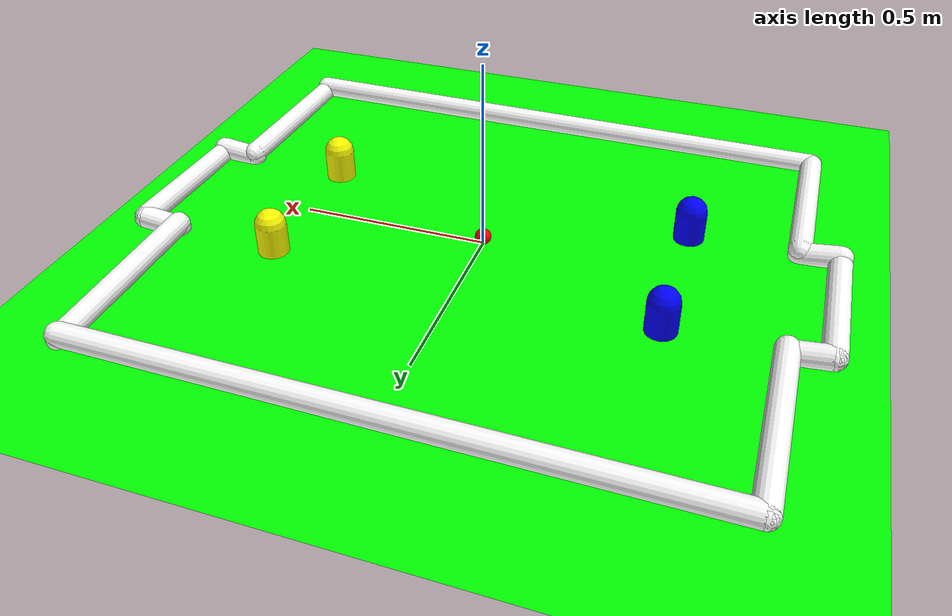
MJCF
<mujoco model="robo_soccer">
	<compiler angle="radian" coordinate="local" inertiafromgeom="true"/>
	<option integrator="RK4" timestep="0.01"/>
	<default>
		<joint armature="1" damping="1" limited="true"/>
		<geom conaffinity="1" contype="1" friction="0.1 0.1 0.1"/>
	</default>

    <asset>
    <texture builtin="gradient" height="100" rgb1="1 1 1" rgb2="0 0 0" type="skybox" width="100"/>
    <texture builtin="flat" height="1278" mark="cross" markrgb="1 1 1" name="texgeom" random="0.01" rgb1="0.8 0.6 0.4" rgb2="0.8 0.6 0.4" type="cube" width="127"/>
    <texture builtin="checker" height="100" name="texplane" rgb1="0 0 0" rgb2="0.8 0.8 0.8" type="2d" width="100"/>
    <material name="MatPlane" reflectance="0.5" shininess="1" specular="1" texrepeat="60 60" texture="texplane"/>
    <material name="geom" texture="texgeom" texuniform="true"/>
  </asset>

	<worldbody>
		<!-- Arena -->
		<geom conaffinity="0" contype="0" name="ground" pos="0 0 0" size="1 1 10" type="plane" rgba="0 1 0 0.8"/>
		<body name="arena">
			<geom conaffinity="0" contype="0" fromto="-0.78 -0.68 0.01 0.78 -0.68 0.02135" name="sideS" size=".03" type="capsule" mass="100" rgba="1 1 1 1"/>
			<geom conaffinity="0" contype="0" fromto="-0.78 0.68 0.01 0.78 0.68 0.02135" name="sideN" size=".03" type="capsule" mass="100" rgba="1 1 1 1"/>
			<geom conaffinity="0" contype="0" fromto="0.88 -0.2 0.01 0.88 0.2 0.02135" name="sideG1" size=".03" type="capsule" mass="100" rgba="1 1 1 1"/>
			<geom conaffinity="0" contype="0" fromto="-0.88 -0.2 0.01 -0.88 0.2 0.02135" name="sideG2" size=".03" type="capsule" mass="100" rgba="1 1 1 1"/>
			<geom conaffinity="1" contype="0" fromto="-0.78 -0.68 0.01 -0.78 -0.2 0.02135" name="sideE1" size=".03" type="capsule" mass="100" rgba="1 1 1 1"/>
			<geom conaffinity="1" contype="0" fromto="-0.78 0.68 0.01 -0.78 0.2 0.02135" name="sideE2" size=".03" type="capsule" mass="100" rgba="1 1 1 1"/>
			<geom conaffinity="1" contype="0" fromto="0.78 -0.68 0.01 0.78 -0.2 0.02135" name="sideW1" size=".03" type="capsule" mass="100" rgba="1 1 1 1"/>
			<geom conaffinity="1" contype="0" fromto="0.78 0.68 0.01 0.78 0.2 0.02135" name="sideW2" size=".03" type="capsule" mass="100" rgba="1 1 1 1"/>
			<geom conaffinity="0" contype="0" fromto="-0.78 -0.2 0.01 -0.88 -0.2 0.02135" name="side1" size=".03" type="capsule" mass="100" rgba="1 1 1 1"/>
			<geom conaffinity="0" contype="0" fromto="-0.78 0.2 0.01 -0.88 0.2 0.02135" name="side2" size=".03" type="capsule" mass="100" rgba="1 1 1 1"/>
			<geom conaffinity="0" contype="0" fromto="0.78 -0.2 0.01 0.88 -0.2 0.02135" name="side3" size=".03" type="capsule" mass="100" rgba="1 1 1 1"/>
			<geom conaffinity="0" contype="0" fromto="0.78 0.2 0.01 0.88 0.2 0.02135" name="side4" size=".03" type="capsule" mass="100" rgba="1 1 1 1"/>
		</body>

		<!-- Ball -->
		<body name="ball" pos="0 0 0.02135">
			<geom contype="1" conaffinity="0" name="ball" pos="0 0 0" size="0.02135" type="sphere" mass="0.046" rgba="1 0 0 1"/>
			<joint name="ball_slidex" type="slide" pos="0 0 0" axis="1 0 0" range="-0.84 0.84" damping="0.1"/>
      		<joint name="ball_slidey" type="slide" pos="0 0 0" axis="0 1 0" range="-0.64 0.64" damping="0.1"/>
		</body>
		<!-- Agent -->
    	<body name="B1" pos="-0.5 0.2 0.03">
	  		<geom conaffinity="1" contype="0" name="agent_b1" fromto="0 0 -0.04 0 0 0.05" size="0.04" type="capsule" mass="1" rgba='0 0 1 1'/>
			<joint name="b1_slidex" type="slide" pos="0 0 0" axis="1 0 0" range="-0.21 1.21" damping="0.1"/>
      		<joint name="b1_slidey" type="slide" pos="0 0 0" axis="0 1 0" range="-0.81 0.41" damping="0.1"/>
		</body>
		<body name="B2" pos="-0.5 -0.2 0.03">
	  		<geom conaffinity="1" contype="0" name="agent_b2" fromto="0 0 -0.04 0 0 0.05" size="0.04" type="capsule" mass="1" rgba='0 0 1 1'/>
			<joint name="b2_slidex" type="slide" pos="0 0 0" axis="1 0 0" range="-0.21 1.21" damping="0.1"/>
      		<joint name="b2_slidey" type="slide" pos="0 0 0" axis="0 1 0" range="-0.41 0.81" damping="0.1"/>
		</body>
		<body name="Y1" pos="0.5 -0.2 0.03">
	  		<geom conaffinity="1" contype="1" name="agent_y1" fromto="0 0 -0.04 0 0 0.05" size="0.04" type="capsule" mass="1" rgba='1 1 0 1'/>
			<joint name="y1_slidex" type="slide" pos="0 0 0" axis="1 0 0" range="-1.21 0.21" damping="0.1"/>
      		<joint name="y1_slidey" type="slide" pos="0 0 0" axis="0 1 0" range="-0.41 0.81" damping="0.1"/>
		</body>
		<body name="Y2" pos="0.5 0.2 0.03">
	  		<geom conaffinity="1" contype="1" name="agent_y2" fromto="0 0 -0.04 0 0 0.05" size="0.04" type="capsule" mass="1" rgba='1 1 0 1'/>
			<joint name="y2_slidex" type="slide" pos="0 0 0" axis="1 0 0" range="-1.21 0.21" damping="0.1"/>
      		<joint name="y2_slidey" type="slide" pos="0 0 0" axis="0 1 0" range="-0.81 0.41" damping="0.1"/>
		</body>
	</worldbody>
	<actuator>
		<motor ctrllimited="true" ctrlrange="-1 1" gear="1" joint="b1_slidex" name="b1_slidex"/>
    	<motor ctrllimited="true" ctrlrange="-1 1" gear="1" joint="b1_slidey" name="b1_slidey"/>
		<motor ctrllimited="true" ctrlrange="-1 1" gear="1" joint="b2_slidex" name="b2_slidex"/>
    	<motor ctrllimited="true" ctrlrange="-1 1" gear="1" joint="b2_slidey" name="b2_slidey"/>
		<motor ctrllimited="true" ctrlrange="-1 1" gear="1" joint="y1_slidex" name="y1_slidex"/>
    	<motor ctrllimited="true" ctrlrange="-1 1" gear="1" joint="y1_slidey" name="y1_slidey"/>
		<motor ctrllimited="true" ctrlrange="-1 1" gear="1" joint="y2_slidex" name="y2_slidex"/>
    	<motor ctrllimited="true" ctrlrange="-1 1" gear="1" joint="y2_slidey" name="y2_slidey"/>
	</actuator>
</mujoco>
